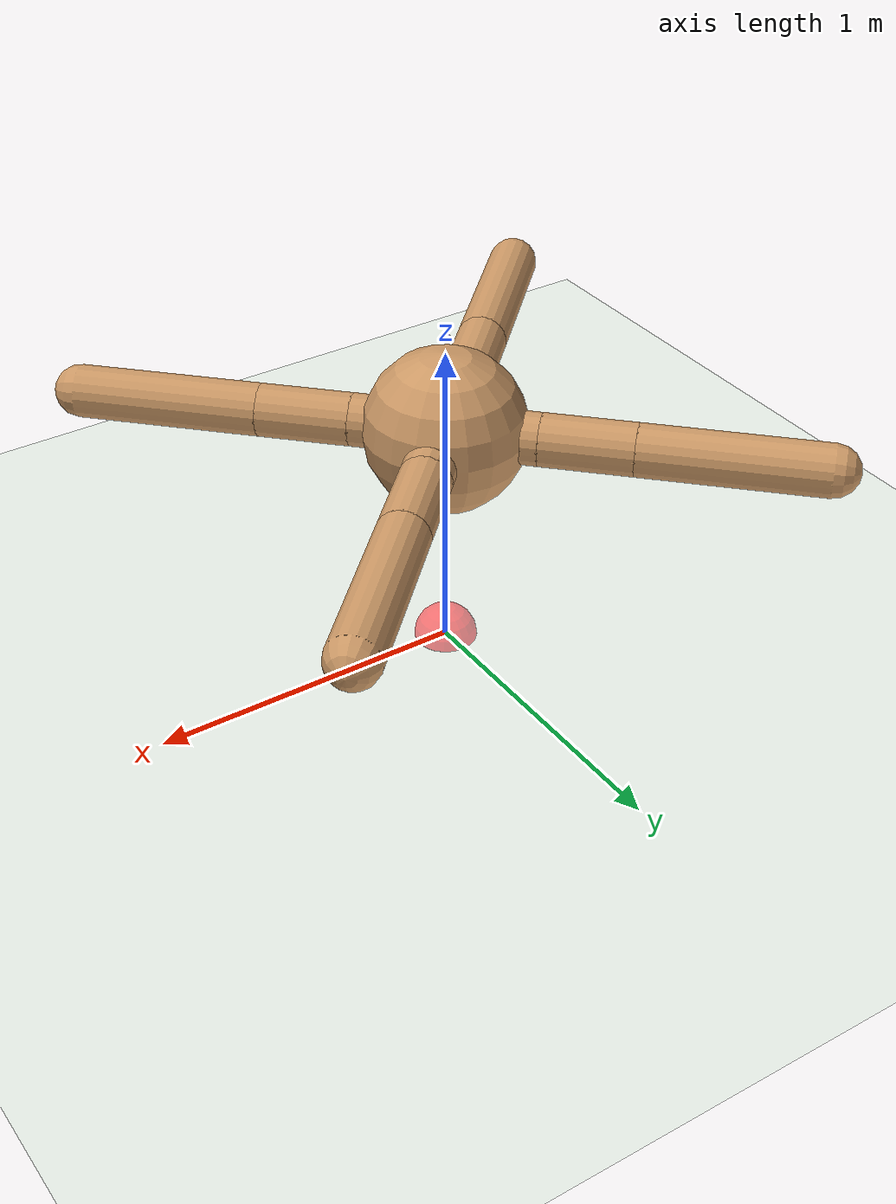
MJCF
<!-- Same a gym ant but with gear ratio of 30 and sites -->
<mujoco model="ant">

    <visual>
        <rgba rangefinder="0 0 0 0"/>
    </visual>

    <compiler angle="degree" coordinate="local" inertiafromgeom="true"/>
    <option integrator="RK4" timestep="0.01"/>
    <custom>
        <numeric data="0.0 0.0 0.55 1.0 0.0 0.0 0.0 0.0 1.0 0.0 -1.0 0.0 -1.0 0.0 1.0" name="init_qpos"/>
    </custom>
    <default>
        <joint armature="1" damping="1" limited="true"/>
        <geom conaffinity="0" condim="3" density="5.0" friction="1 0.5 0.5" margin="0.01" rgba="0.8 0.6 0.4 1"/>
        <default class="rangefinder">
            <site type="capsule" size=".005 .1" material="site"/>
        </default>
        <default class="imu">
            <site type="box" size=".01 .01 .01" material="site" rgba="0 0 1 .4"/>
        </default>
    </default>
    <asset>
        <texture builtin="gradient" height="100" rgb1="1 1 1" rgb2="0 0 0" type="skybox" width="100"/>
        <texture builtin="flat" height="1278" mark="cross" markrgb="1 1 1" name="texgeom" random="0.01" rgb1="0.8 0.6 0.4" rgb2="0.8 0.6 0.4" type="cube" width="127"/>
    <texture name="texplane" type="2d" builtin="checker" rgb1="1 1 1" rgb2="1 1 1" width="100" height="100" />
        <material name="MatPlane" reflectance="0.0" shininess="1" specular="1" texrepeat="60 60" texture="texplane"/>
        <material name="geom" texture="texgeom" texuniform="true"/>
        <material name="site" rgba=".5 .5 .5 .3"/>
    </asset>
    <worldbody>
        <light cutoff="100" diffuse="1 1 1" dir="-0 0 -1.3" directional="true" exponent="1" pos="0 0 1.3" specular=".1 .1 .1"/>
        <geom conaffinity="1" condim="3" material="MatPlane" name="floor" pos="0 0 0" rgba="0.8 0.9 0.8 1" size="50 50 50" type="plane"/>
        <body name="torso" pos="0 0 0.75">
            <!-- Sensors -->
            <camera euler="90 -90 0" fovy="60" name="rgb" pos="0 0 0.3" />
            <site name="rangefinder1" class="rangefinder" fromto="0 0 0.25 0.587785252 0.80901699 0.1" rgba="0 0 0 0"/>
            <site name="rangefinder2" class="rangefinder" fromto="0 0 0.25 0.951056516 0.30901699 0.1" rgba="0 0 0 0"/>
            <site name="rangefinder3" class="rangefinder" fromto="0 0 0.25 0.951056516 -0.30901699 0.1" rgba="0 0 0 0"/>
            <site name="rangefinder4" class="rangefinder" fromto="0 0 0.25 0.587785252 -0.80901699 0.1" rgba="0 0 0 0"/>
            <site name="rangefinder5" class="rangefinder" fromto="0 0 0.25 0.122464680 -1. 0.25" rgba="0 0 0 0"/>
            <site name="rangefinder6" class="rangefinder" fromto="0 0 0.25 -0.587785252 -0.80901699 0.1" rgba="0 0 0 0"/>
            <site name="rangefinder7" class="rangefinder" fromto="0 0 0.25 -0.951056516 -0.30901699 0.1" rgba="0 0 0 0"/>
            <site name="rangefinder8" class="rangefinder" fromto="0 0 0.25 -0.951056516 0.30901699 0.1" rgba="0 0 0 0"/>
            <site name="rangefinder9" class="rangefinder" fromto="0 0 0.25 -0.587785252 0.80901699 0.1" rgba="0 0 0 0"/>
            <site name="rangefinder10" class="rangefinder" fromto="0 0 0.25 -0.244929360 1. 0.1" rgba="0 0 0 0"/>
            <site name="accel1" class="imu" pos="0 0 0.3" />
            <site name="gyro1" class="imu" pos="0 0 0.3" />

            <geom name="torso_geom" pos="0 0 0" size="0.25" type="sphere"/>
            <joint armature="0" damping="0" limited="false" margin="0.01" name="root" pos="0 0 0" type="free"/>
            <body name="front_left_leg" pos="0 0 0">
                <geom fromto="0.0 0.0 0.0 0.2 0.2 0.0" name="aux_1_geom" size="0.08" type="capsule"/>
                <body name="aux_1" pos="0.2 0.2 0">
                    <joint axis="0 0 1" name="hip_1" pos="0.0 0.0 0.0" range="-30 30" type="hinge"/>
                    <geom fromto="0.0 0.0 0.0 0.2 0.2 0.0" name="left_leg_geom" size="0.08" type="capsule"/>
                    <body pos="0.2 0.2 0">
                        <joint axis="-1 1 0" name="ankle_1" pos="0.0 0.0 0.0" range="30 70" type="hinge"/>
                        <geom fromto="0.0 0.0 0.0 0.4 0.4 0.0" name="left_ankle_geom" size="0.08" type="capsule"/>
                    </body>
                </body>
            </body>
            <body name="front_right_leg" pos="0 0 0">
                <geom fromto="0.0 0.0 0.0 -0.2 0.2 0.0" name="aux_2_geom" size="0.08" type="capsule"/>
                <body name="aux_2" pos="-0.2 0.2 0">
                    <joint axis="0 0 1" name="hip_2" pos="0.0 0.0 0.0" range="-30 30" type="hinge"/>
                    <geom fromto="0.0 0.0 0.0 -0.2 0.2 0.0" name="right_leg_geom" size="0.08" type="capsule"/>
                    <body pos="-0.2 0.2 0">
                        <joint axis="1 1 0" name="ankle_2" pos="0.0 0.0 0.0" range="-70 -30" type="hinge"/>
                        <geom fromto="0.0 0.0 0.0 -0.4 0.4 0.0" name="right_ankle_geom" size="0.08" type="capsule"/>
                    </body>
                </body>
            </body>
            <body name="back_leg" pos="0 0 0">
                <geom fromto="0.0 0.0 0.0 -0.2 -0.2 0.0" name="aux_3_geom" size="0.08" type="capsule"/>
                <body name="aux_3" pos="-0.2 -0.2 0">
                    <joint axis="0 0 1" name="hip_3" pos="0.0 0.0 0.0" range="-30 30" type="hinge"/>
                    <geom fromto="0.0 0.0 0.0 -0.2 -0.2 0.0" name="back_leg_geom" size="0.08" type="capsule"/>
                    <body pos="-0.2 -0.2 0">
                        <joint axis="-1 1 0" name="ankle_3" pos="0.0 0.0 0.0" range="-70 -30" type="hinge"/>
                        <geom fromto="0.0 0.0 0.0 -0.4 -0.4 0.0" name="third_ankle_geom" size="0.08" type="capsule"/>
                    </body>
                </body>
            </body>
            <body name="right_back_leg" pos="0 0 0">
                <geom fromto="0.0 0.0 0.0 0.2 -0.2 0.0" name="aux_4_geom" size="0.08" type="capsule"/>
                <body name="aux_4" pos="0.2 -0.2 0">
                    <joint axis="0 0 1" name="hip_4" pos="0.0 0.0 0.0" range="-30 30" type="hinge"/>
                    <geom fromto="0.0 0.0 0.0 0.2 -0.2 0.0" name="rightback_leg_geom" size="0.08" type="capsule"/>
                    <body pos="0.2 -0.2 0">
                        <joint axis="1 1 0" name="ankle_4" pos="0.0 0.0 0.0" range="30 70" type="hinge"/>
                        <geom fromto="0.0 0.0 0.0 0.4 -0.4 0.0" name="fourth_ankle_geom" size="0.08" type="capsule"/>
                    </body>
                </body>
            </body>
        </body>
        <!--By default, this goal will be hidden under the floor-->
        <site name="goal" rgba="0 1 1 0.5" pos="0. 0. -1" size="0.5" />
        <site name="origin" rgba="1 0 0 0.5" pos="0. 0. 0." size="0.1" />
    </worldbody>
    <actuator>
        <motor ctrllimited="true" ctrlrange="-1.0 1.0" joint="hip_4" gear="30"/>
        <motor ctrllimited="true" ctrlrange="-1.0 1.0" joint="ankle_4" gear="30"/>
        <motor ctrllimited="true" ctrlrange="-1.0 1.0" joint="hip_1" gear="30"/>
        <motor ctrllimited="true" ctrlrange="-1.0 1.0" joint="ankle_1" gear="30"/>
        <motor ctrllimited="true" ctrlrange="-1.0 1.0" joint="hip_2" gear="30"/>
        <motor ctrllimited="true" ctrlrange="-1.0 1.0" joint="ankle_2" gear="30"/>
        <motor ctrllimited="true" ctrlrange="-1.0 1.0" joint="hip_3" gear="30"/>
        <motor ctrllimited="true" ctrlrange="-1.0 1.0" joint="ankle_3" gear="30"/>
    </actuator>
    <sensor>
        <rangefinder name="rangefinder1" noise="0" site="rangefinder1"/>
        <rangefinder name="rangefinder2" noise="0" site="rangefinder2"/>
        <rangefinder name="rangefinder3" noise="0" site="rangefinder3"/>
        <rangefinder name="rangefinder4" noise="0" site="rangefinder4"/>
        <rangefinder name="rangefinder5" noise="0" site="rangefinder5"/>
        <rangefinder name="rangefinder6" noise="0" site="rangefinder6"/>
        <rangefinder name="rangefinder7" noise="0" site="rangefinder7"/>
        <rangefinder name="rangefinder8" noise="0" site="rangefinder8"/>
        <rangefinder name="rangefinder9" noise="0" site="rangefinder9"/>
        <rangefinder name="rangefinder10" noise="0" site="rangefinder10"/>
        <accelerometer name="accel1" noise="0" site="accel1" cutoff="10" />
        <gyro name="gyro1" noise="0" site="gyro1" cutoff="10"/>
    </sensor>
</mujoco>
